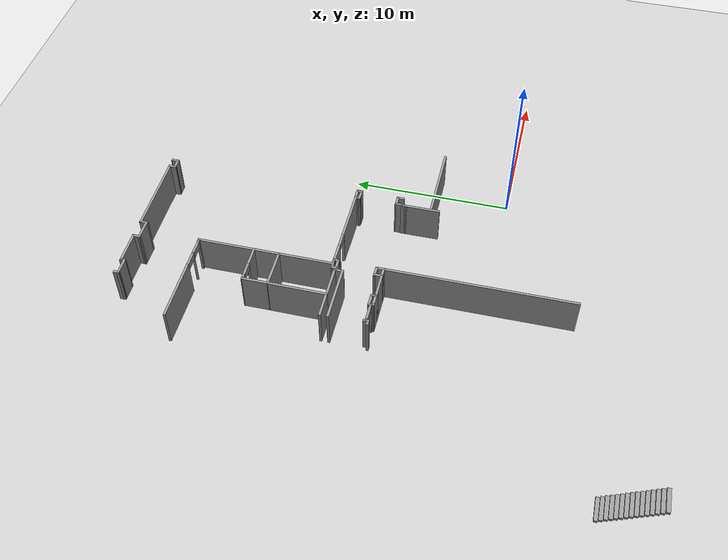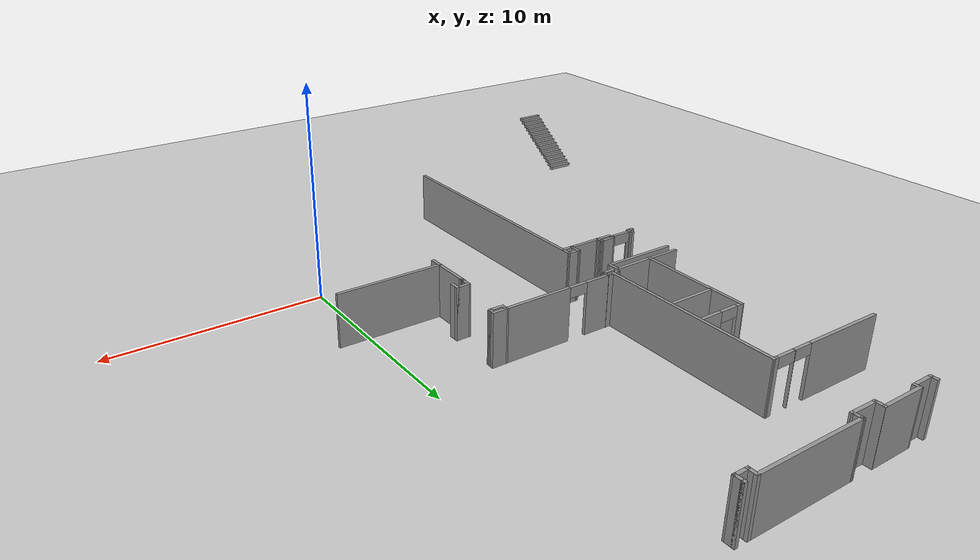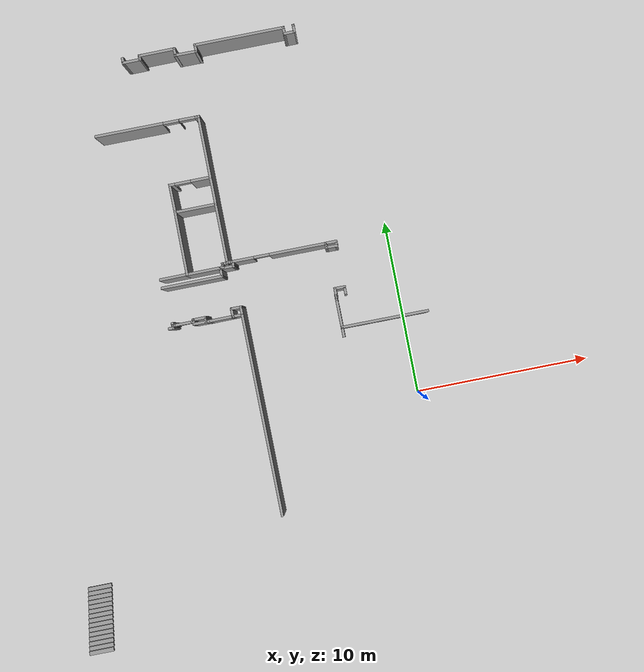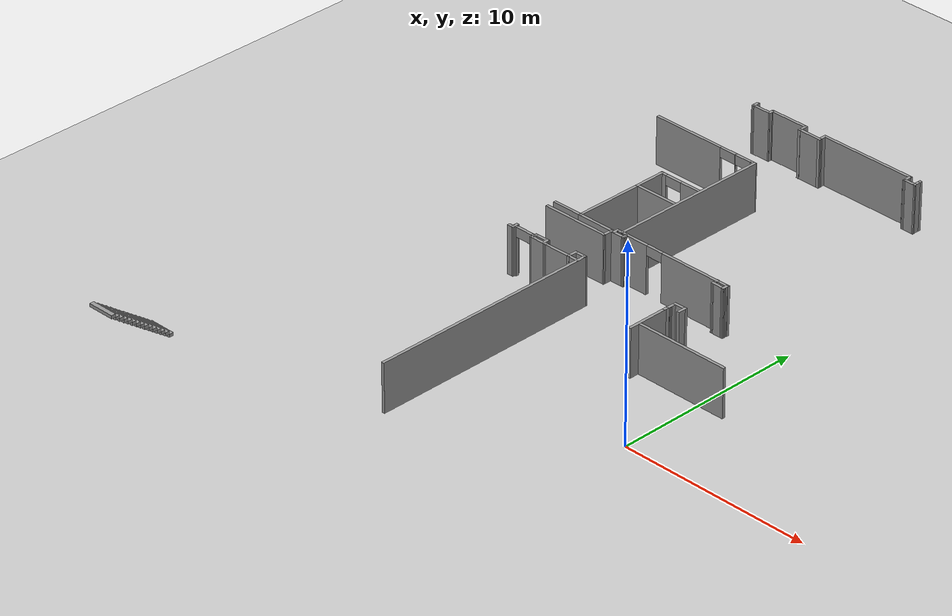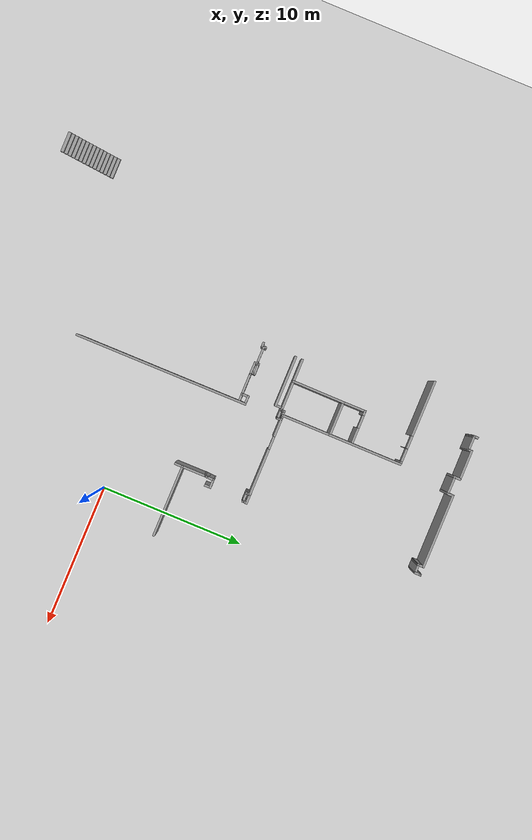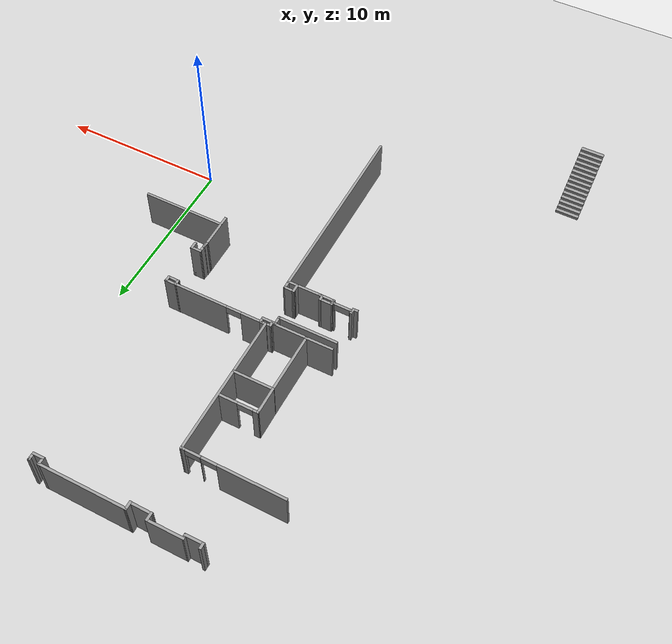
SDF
<sdf version="1.6">
 <world name="default">
  <model name="ground_plane">
   <static>1</static>
   <link name="link">
    <collision name="collision">
     <geometry><plane><normal>0 0 1</normal><size>100 100</size></plane></geometry>
     <surface>
      <contact><collide_bitmask>65535</collide_bitmask></contact>
      <friction><ode><mu>100</mu><mu2>50</mu2></ode></friction>
     </surface>
    </collision>
    <visual name="visual">
     <cast_shadows>0</cast_shadows>
     <geometry><plane><normal>0 0 1</normal><size>100 100</size></plane></geometry>
     <material>
      <script><uri>file://media/materials/scripts/gazebo.material</uri><name>Gazebo/Grey</name></script>
     </material>
    </visual>
   </link>
  </model>
  <model name="Myhal_5th_floor">
   <pose>-0.342666 0.4433 0 0 -0 0</pose>
   <link name="Stairs_2">
    <visual name="Stairs_2_Visual_0">
     <pose>-20.0394 -8.07341 0.083333 0 -0 0</pose>
     <geometry><box><size>1.39487 0.225838 0.166667</size></box></geometry>
     <material>
      <script><uri>file://media/materials/scripts/gazebo.material</uri><name>Gazebo/Grey</name></script>
      <ambient>1 1 1 1</ambient>
     </material>
     <meta><layer>0</layer></meta>
    </visual>
    <collision name="Stairs_2_Collision_0">
     <geometry><box><size>1.39487 0.225838 0.166667</size></box></geometry>
     <pose>-20.0394 -8.07341 0.083333 0 -0 0</pose>
    </collision>
    <visual name="Stairs_2_Visual_1">
     <pose>-20.0394 -8.29925 0.25 0 -0 0</pose>
     <geometry><box><size>1.39487 0.225838 0.166667</size></box></geometry>
     <material>
      <script><uri>file://media/materials/scripts/gazebo.material</uri><name>Gazebo/Grey</name></script>
      <ambient>1 1 1 1</ambient>
     </material>
     <meta><layer>0</layer></meta>
    </visual>
    <collision name="Stairs_2_Collision_1">
     <geometry><box><size>1.39487 0.225838 0.166667</size></box></geometry>
     <pose>-20.0394 -8.29925 0.25 0 -0 0</pose>
    </collision>
    <visual name="Stairs_2_Visual_2">
     <pose>-20.0394 -8.52509 0.416667 0 -0 0</pose>
     <geometry><box><size>1.39487 0.225838 0.166667</size></box></geometry>
     <material>
      <script><uri>file://media/materials/scripts/gazebo.material</uri><name>Gazebo/Grey</name></script>
      <ambient>1 1 1 1</ambient>
     </material>
     <meta><layer>0</layer></meta>
    </visual>
    <collision name="Stairs_2_Collision_2">
     <geometry><box><size>1.39487 0.225838 0.166667</size></box></geometry>
     <pose>-20.0394 -8.52509 0.416667 0 -0 0</pose>
    </collision>
    <visual name="Stairs_2_Visual_3">
     <pose>-20.0394 -8.75093 0.583333 0 -0 0</pose>
     <geometry><box><size>1.39487 0.225838 0.166667</size></box></geometry>
     <material>
      <script><uri>file://media/materials/scripts/gazebo.material</uri><name>Gazebo/Grey</name></script>
      <ambient>1 1 1 1</ambient>
     </material>
     <meta><layer>0</layer></meta>
    </visual>
    <collision name="Stairs_2_Collision_3">
     <geometry><box><size>1.39487 0.225838 0.166667</size></box></geometry>
     <pose>-20.0394 -8.75093 0.583333 0 -0 0</pose>
    </collision>
    <visual name="Stairs_2_Visual_4">
     <pose>-20.0394 -8.97677 0.75 0 -0 0</pose>
     <geometry><box><size>1.39487 0.225838 0.166667</size></box></geometry>
     <material>
      <script><uri>file://media/materials/scripts/gazebo.material</uri><name>Gazebo/Grey</name></script>
      <ambient>1 1 1 1</ambient>
     </material>
     <meta><layer>0</layer></meta>
    </visual>
    <collision name="Stairs_2_Collision_4">
     <geometry><box><size>1.39487 0.225838 0.166667</size></box></geometry>
     <pose>-20.0394 -8.97677 0.75 0 -0 0</pose>
    </collision>
    <visual name="Stairs_2_Visual_5">
     <pose>-20.0394 -9.20261 0.916667 0 -0 0</pose>
     <geometry><box><size>1.39487 0.225838 0.166667</size></box></geometry>
     <material>
      <script><uri>file://media/materials/scripts/gazebo.material</uri><name>Gazebo/Grey</name></script>
      <ambient>1 1 1 1</ambient>
     </material>
     <meta><layer>0</layer></meta>
    </visual>
    <collision name="Stairs_2_Collision_5">
     <geometry><box><size>1.39487 0.225838 0.166667</size></box></geometry>
     <pose>-20.0394 -9.20261 0.916667 0 -0 0</pose>
    </collision>
    <visual name="Stairs_2_Visual_6">
     <pose>-20.0394 -9.42844 1.08333 0 -0 0</pose>
     <geometry><box><size>1.39487 0.225838 0.166667</size></box></geometry>
     <material>
      <script><uri>file://media/materials/scripts/gazebo.material</uri><name>Gazebo/Grey</name></script>
      <ambient>1 1 1 1</ambient>
     </material>
     <meta><layer>0</layer></meta>
    </visual>
    <collision name="Stairs_2_Collision_6">
     <geometry><box><size>1.39487 0.225838 0.166667</size></box></geometry>
     <pose>-20.0394 -9.42844 1.08333 0 -0 0</pose>
    </collision>
    <visual name="Stairs_2_Visual_7">
     <pose>-20.0394 -9.65428 1.25 0 -0 0</pose>
     <geometry><box><size>1.39487 0.225838 0.166667</size></box></geometry>
     <material>
      <script><uri>file://media/materials/scripts/gazebo.material</uri><name>Gazebo/Grey</name></script>
      <ambient>1 1 1 1</ambient>
     </material>
     <meta><layer>0</layer></meta>
    </visual>
    <collision name="Stairs_2_Collision_7">
     <geometry><box><size>1.39487 0.225838 0.166667</size></box></geometry>
     <pose>-20.0394 -9.65428 1.25 0 -0 0</pose>
    </collision>
    <visual name="Stairs_2_Visual_8">
     <pose>-20.0394 -9.88012 1.41667 0 -0 0</pose>
     <geometry><box><size>1.39487 0.225838 0.166667</size></box></geometry>
     <material>
      <script><uri>file://media/materials/scripts/gazebo.material</uri><name>Gazebo/Grey</name></script>
      <ambient>1 1 1 1</ambient>
     </material>
     <meta><layer>0</layer></meta>
    </visual>
    <collision name="Stairs_2_Collision_8">
     <geometry><box><size>1.39487 0.225838 0.166667</size></box></geometry>
     <pose>-20.0394 -9.88012 1.41667 0 -0 0</pose>
    </collision>
    <visual name="Stairs_2_Visual_9">
     <pose>-20.0394 -10.106 1.58333 0 -0 0</pose>
     <geometry><box><size>1.39487 0.225838 0.166667</size></box></geometry>
     <material>
      <script><uri>file://media/materials/scripts/gazebo.material</uri><name>Gazebo/Grey</name></script>
      <ambient>1 1 1 1</ambient>
     </material>
     <meta><layer>0</layer></meta>
    </visual>
    <collision name="Stairs_2_Collision_9">
     <geometry><box><size>1.39487 0.225838 0.166667</size></box></geometry>
     <pose>-20.0394 -10.106 1.58333 0 -0 0</pose>
    </collision>
    <visual name="Stairs_2_Visual_10">
     <pose>-20.0394 -10.3318 1.75 0 -0 0</pose>
     <geometry><box><size>1.39487 0.225838 0.166667</size></box></geometry>
     <material>
      <script><uri>file://media/materials/scripts/gazebo.material</uri><name>Gazebo/Grey</name></script>
      <ambient>1 1 1 1</ambient>
     </material>
     <meta><layer>0</layer></meta>
    </visual>
    <collision name="Stairs_2_Collision_10">
     <geometry><box><size>1.39487 0.225838 0.166667</size></box></geometry>
     <pose>-20.0394 -10.3318 1.75 0 -0 0</pose>
    </collision>
    <visual name="Stairs_2_Visual_11">
     <pose>-20.0394 -10.5576 1.91667 0 -0 0</pose>
     <geometry><box><size>1.39487 0.225838 0.166667</size></box></geometry>
     <material>
      <script><uri>file://media/materials/scripts/gazebo.material</uri><name>Gazebo/Grey</name></script>
      <ambient>1 1 1 1</ambient>
     </material>
     <meta><layer>0</layer></meta>
    </visual>
    <collision name="Stairs_2_Collision_11">
     <geometry><box><size>1.39487 0.225838 0.166667</size></box></geometry>
     <pose>-20.0394 -10.5576 1.91667 0 -0 0</pose>
    </collision>
    <visual name="Stairs_2_Visual_12">
     <pose>-20.0394 -10.7835 2.08333 0 -0 0</pose>
     <geometry><box><size>1.39487 0.225838 0.166667</size></box></geometry>
     <material>
      <script><uri>file://media/materials/scripts/gazebo.material</uri><name>Gazebo/Grey</name></script>
      <ambient>1 1 1 1</ambient>
     </material>
     <meta><layer>0</layer></meta>
    </visual>
    <collision name="Stairs_2_Collision_12">
     <geometry><box><size>1.39487 0.225838 0.166667</size></box></geometry>
     <pose>-20.0394 -10.7835 2.08333 0 -0 0</pose>
    </collision>
    <visual name="Stairs_2_Visual_13">
     <pose>-20.0394 -11.0093 2.25 0 -0 0</pose>
     <geometry><box><size>1.39487 0.225838 0.166667</size></box></geometry>
     <material>
      <script><uri>file://media/materials/scripts/gazebo.material</uri><name>Gazebo/Grey</name></script>
      <ambient>1 1 1 1</ambient>
     </material>
     <meta><layer>0</layer></meta>
    </visual>
    <collision name="Stairs_2_Collision_13">
     <geometry><box><size>1.39487 0.225838 0.166667</size></box></geometry>
     <pose>-20.0394 -11.0093 2.25 0 -0 0</pose>
    </collision>
    <visual name="Stairs_2_Visual_14">
     <pose>-20.0394 -11.2352 2.41667 0 -0 0</pose>
     <geometry><box><size>1.39487 0.225838 0.166667</size></box></geometry>
     <material>
      <script><uri>file://media/materials/scripts/gazebo.material</uri><name>Gazebo/Grey</name></script>
      <ambient>1 1 1 1</ambient>
     </material>
     <meta><layer>0</layer></meta>
    </visual>
    <collision name="Stairs_2_Collision_14">
     <geometry><box><size>1.39487 0.225838 0.166667</size></box></geometry>
     <pose>-20.0394 -11.2352 2.41667 0 -0 0</pose>
    </collision>
   </link>
   <link name="Wall_107">
    <pose>-11.9817 5.95749 0 0 -0 -0.003731</pose>
    <visual name="Wall_107_Visual_0">
     <pose>-0.561486 0 1.25 0 -0 0</pose>
     <geometry><box><size>0.198875 0.15 2.5</size></box></geometry>
     <material>
      <script><uri>file://media/materials/scripts/gazebo.material</uri><name>Gazebo/Grey</name></script>
      <ambient>1 1 1 1</ambient>
     </material>
     <meta><layer>0</layer></meta>
    </visual>
    <collision name="Wall_107_Collision_0">
     <geometry><box><size>0.198875 0.15 2.5</size></box></geometry>
     <pose>-0.561486 0 1.25 0 -0 0</pose>
    </collision>
    <visual name="Wall_107_Visual_1">
     <pose>0.549437 0 1.25 0 -0 0</pose>
     <geometry><box><size>0.222972 0.15 2.5</size></box></geometry>
     <material>
      <script><uri>file://media/materials/scripts/gazebo.material</uri><name>Gazebo/Grey</name></script>
      <ambient>1 1 1 1</ambient>
     </material>
     <meta><layer>0</layer></meta>
    </visual>
    <collision name="Wall_107_Collision_1">
     <geometry><box><size>0.222972 0.15 2.5</size></box></geometry>
     <pose>0.549437 0 1.25 0 -0 0</pose>
    </collision>
    <visual name="Wall_107_Visual_2">
     <pose>-0.012049 0 2.25 0 -0 0</pose>
     <geometry><box><size>0.9 0.15 0.5</size></box></geometry>
     <material>
      <script><uri>file://media/materials/scripts/gazebo.material</uri><name>Gazebo/Grey</name></script>
      <ambient>1 1 1 1</ambient>
     </material>
     <meta><layer>0</layer></meta>
    </visual>
    <collision name="Wall_107_Collision_2">
     <geometry><box><size>0.9 0.15 0.5</size></box></geometry>
     <pose>-0.012049 0 2.25 0 -0 0</pose>
    </collision>
   </link>
   <link name="Wall_21">
    <collision name="Wall_21_Collision">
     <geometry><box><size>2.22276 0.15 2.5</size></box></geometry>
     <pose>0 0 1.25 0 -0 0</pose>
    </collision>
    <visual name="Wall_21_Visual">
     <pose>0 0 1.25 0 -0 0</pose>
     <geometry><box><size>2.22276 0.15 2.5</size></box></geometry>
     <material>
      <script><uri>file://media/materials/scripts/gazebo.material</uri><name>Gazebo/Grey</name></script>
      <ambient>1 1 1 1</ambient>
     </material>
     <meta><layer>0</layer></meta>
    </visual>
    <pose>-3.25633 4.58323 0 0 -0 1.5744</pose>
   </link>
   <link name="Wall_25">
    <collision name="Wall_25_Collision">
     <geometry><box><size>0.524535 0.15 2.5</size></box></geometry>
     <pose>0 0 1.25 0 -0 0</pose>
    </collision>
    <visual name="Wall_25_Visual">
     <pose>0 0 1.25 0 -0 0</pose>
     <geometry><box><size>0.524535 0.15 2.5</size></box></geometry>
     <material>
      <script><uri>file://media/materials/scripts/gazebo.material</uri><name>Gazebo/Grey</name></script>
      <ambient>1 1 1 1</ambient>
     </material>
     <meta><layer>0</layer></meta>
    </visual>
    <pose>-3.23557 6.05409 0 0 -0 1.55781</pose>
   </link>
   <link name="Wall_26">
    <collision name="Wall_26_Collision">
     <geometry><box><size>0.694733 0.15 2.5</size></box></geometry>
     <pose>0 0 1.25 0 -0 0</pose>
    </collision>
    <visual name="Wall_26_Visual">
     <pose>0 0 1.25 0 -0 0</pose>
     <geometry><box><size>0.694733 0.15 2.5</size></box></geometry>
     <material>
      <script><uri>file://media/materials/scripts/gazebo.material</uri><name>Gazebo/Grey</name></script>
      <ambient>1 1 1 1</ambient>
     </material>
     <meta><layer>0</layer></meta>
    </visual>
    <pose>-2.96077 6.24134 0 0 -0 0</pose>
   </link>
   <link name="Wall_27">
    <collision name="Wall_27_Collision">
     <geometry><box><size>0.490458 0.15 2.5</size></box></geometry>
     <pose>0 0 1.25 0 -0 0</pose>
    </collision>
    <visual name="Wall_27_Visual">
     <pose>0 0 1.25 0 -0 0</pose>
     <geometry><box><size>0.490458 0.15 2.5</size></box></geometry>
     <material>
      <script><uri>file://media/materials/scripts/gazebo.material</uri><name>Gazebo/Grey</name></script>
      <ambient>1 1 1 1</ambient>
     </material>
     <meta><layer>0</layer></meta>
    </visual>
    <pose>-2.68841 6.07111 0 0 -0 -1.5708</pose>
   </link>
   <link name="Wall_29">
    <collision name="Wall_29_Collision">
     <geometry><box><size>5.0278 0.15 2.5</size></box></geometry>
     <pose>0 0 1.25 0 -0 0</pose>
    </collision>
    <visual name="Wall_29_Visual">
     <pose>0 0 1.25 0 -0 0</pose>
     <geometry><box><size>5.0278 0.15 2.5</size></box></geometry>
     <material>
      <script><uri>file://media/materials/scripts/gazebo.material</uri><name>Gazebo/Grey</name></script>
      <ambient>1 1 1 1</ambient>
     </material>
     <meta><layer>0</layer></meta>
    </visual>
    <pose>-0.799118 4.02659 0 0 -0 3.13887</pose>
   </link>
   <link name="Wall_460">
    <collision name="Wall_460_Collision">
     <geometry><box><size>0.398216 0.15 2.5</size></box></geometry>
     <pose>0 0 1.25 0 -0 0</pose>
    </collision>
    <visual name="Wall_460_Visual">
     <pose>0 0 1.25 0 -0 0</pose>
     <geometry><box><size>0.398216 0.15 2.5</size></box></geometry>
     <material>
      <script><uri>file://media/materials/scripts/gazebo.material</uri><name>Gazebo/Grey</name></script>
      <ambient>1 1 1 1</ambient>
     </material>
     <meta><layer>0</layer></meta>
    </visual>
    <pose>-3.24903 5.74322 0 0 -0 -1.6598</pose>
   </link>
   <link name="Wall_461">
    <collision name="Wall_461_Collision">
     <geometry><box><size>0.376793 0.15 2.5</size></box></geometry>
     <pose>0 0 1.25 0 -0 0</pose>
    </collision>
    <visual name="Wall_461_Visual">
     <pose>0 0 1.25 0 -0 0</pose>
     <geometry><box><size>0.376793 0.15 2.5</size></box></geometry>
     <material>
      <script><uri>file://media/materials/scripts/gazebo.material</uri><name>Gazebo/Grey</name></script>
      <ambient>1 1 1 1</ambient>
     </material>
     <meta><layer>0</layer></meta>
    </visual>
    <pose>-3.2596 5.73615 0 0 -0 1.56666</pose>
   </link>
   <link name="Wall_590">
    <collision name="Wall_590_Collision">
     <geometry><box><size>0.741053 0.15 2.5</size></box></geometry>
     <pose>0 0 1.25 0 -0 0</pose>
    </collision>
    <visual name="Wall_590_Visual">
     <pose>0 0 1.25 0 -0 0</pose>
     <geometry><box><size>0.741053 0.15 2.5</size></box></geometry>
     <material>
      <script><uri>file://media/materials/scripts/gazebo.material</uri><name>Gazebo/Grey</name></script>
      <ambient>1 1 1 1</ambient>
     </material>
     <meta><layer>0</layer></meta>
    </visual>
    <pose>-2.95013 8.84595 0 0 -0 3.13647</pose>
   </link>
   <link name="Wall_591">
    <pose>-5.94536 8.8431 0 0 -0 3.14007</pose>
    <visual name="Wall_591_Visual_0">
     <pose>-1.11613 0 1.25 0 -0 0</pose>
     <geometry><box><size>3.30868 0.15 2.5</size></box></geometry>
     <material>
      <script><uri>file://media/materials/scripts/gazebo.material</uri><name>Gazebo/Grey</name></script>
      <ambient>1 1 1 1</ambient>
     </material>
     <meta><layer>0</layer></meta>
    </visual>
    <collision name="Wall_591_Collision_0">
     <geometry><box><size>3.30868 0.15 2.5</size></box></geometry>
     <pose>-1.11613 0 1.25 0 -0 0</pose>
    </collision>
    <visual name="Wall_591_Visual_1">
     <pose>2.10434 0 1.25 0 -0 0</pose>
     <geometry><box><size>1.33226 0.15 2.5</size></box></geometry>
     <material>
      <script><uri>file://media/materials/scripts/gazebo.material</uri><name>Gazebo/Grey</name></script>
      <ambient>1 1 1 1</ambient>
     </material>
     <meta><layer>0</layer></meta>
    </visual>
    <collision name="Wall_591_Collision_1">
     <geometry><box><size>1.33226 0.15 2.5</size></box></geometry>
     <pose>2.10434 0 1.25 0 -0 0</pose>
    </collision>
    <visual name="Wall_591_Visual_2">
     <pose>0.98821 0 2.25 0 -0 0</pose>
     <geometry><box><size>0.9 0.15 0.5</size></box></geometry>
     <material>
      <script><uri>file://media/materials/scripts/gazebo.material</uri><name>Gazebo/Grey</name></script>
      <ambient>1 1 1 1</ambient>
     </material>
     <meta><layer>0</layer></meta>
    </visual>
    <collision name="Wall_591_Collision_2">
     <geometry><box><size>0.9 0.15 0.5</size></box></geometry>
     <pose>0.98821 0 2.25 0 -0 0</pose>
    </collision>
   </link>
   <link name="Wall_593">
    <collision name="Wall_593_Collision">
     <geometry><box><size>0.389792 0.15 2.5</size></box></geometry>
     <pose>0 0 1.25 0 -0 0</pose>
    </collision>
    <visual name="Wall_593_Visual">
     <pose>0 0 1.25 0 -0 0</pose>
     <geometry><box><size>0.389792 0.15 2.5</size></box></geometry>
     <material>
      <script><uri>file://media/materials/scripts/gazebo.material</uri><name>Gazebo/Grey</name></script>
      <ambient>1 1 1 1</ambient>
     </material>
     <meta><layer>0</layer></meta>
    </visual>
    <pose>-3.24878 8.72761 0 0 -0 -1.59686</pose>
   </link>
   <link name="Wall_594">
    <collision name="Wall_594_Collision">
     <geometry><box><size>0.734031 0.15 2.5</size></box></geometry>
     <pose>0 0 1.25 0 -0 0</pose>
    </collision>
    <visual name="Wall_594_Visual">
     <pose>0 0 1.25 0 -0 0</pose>
     <geometry><box><size>0.734031 0.15 2.5</size></box></geometry>
     <material>
      <script><uri>file://media/materials/scripts/gazebo.material</uri><name>Gazebo/Grey</name></script>
      <ambient>1 1 1 1</ambient>
     </material>
     <meta><layer>0</layer></meta>
    </visual>
    <pose>-2.95991 8.60256 0 0 -0 -0.017768</pose>
   </link>
   <link name="Wall_596">
    <collision name="Wall_596_Collision">
     <geometry><box><size>0.343785 0.15 2.5</size></box></geometry>
     <pose>0 0 1.25 0 -0 0</pose>
    </collision>
    <visual name="Wall_596_Visual">
     <pose>0 0 1.25 0 -0 0</pose>
     <geometry><box><size>0.343785 0.15 2.5</size></box></geometry>
     <material>
      <script><uri>file://media/materials/scripts/gazebo.material</uri><name>Gazebo/Grey</name></script>
      <ambient>1 1 1 1</ambient>
     </material>
     <meta><layer>0</layer></meta>
    </visual>
    <pose>-2.66792 8.69427 0 0 -0 1.5708</pose>
   </link>
   <link name="Wall_604">
    <collision name="Wall_604_Collision">
     <geometry><box><size>0.15 0.15 2.5</size></box></geometry>
     <pose>0 0 1.25 0 -0 0</pose>
    </collision>
    <visual name="Wall_604_Visual">
     <pose>0 0 1.25 0 -0 0</pose>
     <geometry><box><size>0.15 0.15 2.5</size></box></geometry>
     <material>
      <script><uri>file://media/materials/scripts/gazebo.material</uri><name>Gazebo/Grey</name></script>
      <ambient>1 1 1 1</ambient>
     </material>
     <meta><layer>0</layer></meta>
    </visual>
    <pose>-2.6724 21.2148 0 0 -0 0</pose>
   </link>
   <link name="Wall_605">
    <collision name="Wall_605_Collision">
     <geometry><box><size>0.5 0.15 2.5</size></box></geometry>
     <pose>0 0 1.25 0 -0 0</pose>
    </collision>
    <visual name="Wall_605_Visual">
     <pose>0 0 1.25 0 -0 0</pose>
     <geometry><box><size>0.5 0.15 2.5</size></box></geometry>
     <material>
      <script><uri>file://media/materials/scripts/gazebo.material</uri><name>Gazebo/Grey</name></script>
      <ambient>1 1 1 1</ambient>
     </material>
     <meta><layer>0</layer></meta>
    </visual>
    <pose>-2.6724 21.0398 0 0 -0 -1.5708</pose>
   </link>
   <link name="Wall_606">
    <collision name="Wall_606_Collision">
     <geometry><box><size>0.717033 0.15 2.5</size></box></geometry>
     <pose>0 0 1.25 0 -0 0</pose>
    </collision>
    <visual name="Wall_606_Visual">
     <pose>0 0 1.25 0 -0 0</pose>
     <geometry><box><size>0.717033 0.15 2.5</size></box></geometry>
     <material>
      <script><uri>file://media/materials/scripts/gazebo.material</uri><name>Gazebo/Grey</name></script>
      <ambient>1 1 1 1</ambient>
     </material>
     <meta><layer>0</layer></meta>
    </visual>
    <pose>-2.9559 20.8621 0 0 -0 -3.1319</pose>
   </link>
   <link name="Wall_607">
    <collision name="Wall_607_Collision">
     <geometry><box><size>0.5 0.15 2.5</size></box></geometry>
     <pose>0 0 1.25 0 -0 0</pose>
    </collision>
    <visual name="Wall_607_Visual">
     <pose>0 0 1.25 0 -0 0</pose>
     <geometry><box><size>0.5 0.15 2.5</size></box></geometry>
     <material>
      <script><uri>file://media/materials/scripts/gazebo.material</uri><name>Gazebo/Grey</name></script>
      <ambient>1 1 1 1</ambient>
     </material>
     <meta><layer>0</layer></meta>
    </visual>
    <pose>-3.24491 21.0343 0 0 -0 1.5708</pose>
   </link>
   <link name="Wall_609">
    <collision name="Wall_609_Collision">
     <geometry><box><size>5.20601 0.15 2.5</size></box></geometry>
     <pose>0 0 1.25 0 -0 0</pose>
    </collision>
    <visual name="Wall_609_Visual">
     <pose>0 0 1.25 0 -0 0</pose>
     <geometry><box><size>5.20601 0.15 2.5</size></box></geometry>
     <material>
      <script><uri>file://media/materials/scripts/gazebo.material</uri><name>Gazebo/Grey</name></script>
      <ambient>1 1 1 1</ambient>
     </material>
     <meta><layer>0</layer></meta>
    </visual>
    <pose>-5.77291 21.2093 0 0 -0 3.14159</pose>
   </link>
   <link name="Wall_611">
    <collision name="Wall_611_Collision">
     <geometry><box><size>0.522037 0.15 2.5</size></box></geometry>
     <pose>0 0 1.25 0 -0 0</pose>
    </collision>
    <visual name="Wall_611_Visual">
     <pose>0 0 1.25 0 -0 0</pose>
     <geometry><box><size>0.522037 0.15 2.5</size></box></geometry>
     <material>
      <script><uri>file://media/materials/scripts/gazebo.material</uri><name>Gazebo/Grey</name></script>
      <ambient>1 1 1 1</ambient>
     </material>
     <meta><layer>0</layer></meta>
    </visual>
    <pose>-8.30366 21.0233 0 0 -0 -1.55601</pose>
   </link>
   <link name="Wall_612">
    <collision name="Wall_612_Collision">
     <geometry><box><size>1.34353 0.15 2.5</size></box></geometry>
     <pose>0 0 1.25 0 -0 0</pose>
    </collision>
    <visual name="Wall_612_Visual">
     <pose>0 0 1.25 0 -0 0</pose>
     <geometry><box><size>1.34353 0.15 2.5</size></box></geometry>
     <material>
      <script><uri>file://media/materials/scripts/gazebo.material</uri><name>Gazebo/Grey</name></script>
      <ambient>1 1 1 1</ambient>
     </material>
     <meta><layer>0</layer></meta>
    </visual>
    <pose>-8.89766 20.8483 0 0 -0 3.13238</pose>
   </link>
   <link name="Wall_613">
    <collision name="Wall_613_Collision">
     <geometry><box><size>0.516538 0.15 2.5</size></box></geometry>
     <pose>0 0 1.25 0 -0 0</pose>
    </collision>
    <visual name="Wall_613_Visual">
     <pose>0 0 1.25 0 -0 0</pose>
     <geometry><box><size>0.516538 0.15 2.5</size></box></geometry>
     <material>
      <script><uri>file://media/materials/scripts/gazebo.material</uri><name>Gazebo/Grey</name></script>
      <ambient>1 1 1 1</ambient>
     </material>
     <meta><layer>0</layer></meta>
    </visual>
    <pose>-9.49165 21.0316 0 0 -0 1.55579</pose>
   </link>
   <link name="Wall_614">
    <collision name="Wall_614_Collision">
     <geometry><box><size>2.14267 0.15 2.5</size></box></geometry>
     <pose>0 0 1.25 0 -0 0</pose>
    </collision>
    <visual name="Wall_614_Visual">
     <pose>0 0 1.25 0 -0 0</pose>
     <geometry><box><size>2.14267 0.15 2.5</size></box></geometry>
     <material>
      <script><uri>file://media/materials/scripts/gazebo.material</uri><name>Gazebo/Grey</name></script>
      <ambient>1 1 1 1</ambient>
     </material>
     <meta><layer>0</layer></meta>
    </visual>
    <pose>-10.4907 21.2166 0 0 -0 -3.13789</pose>
   </link>
   <link name="Wall_616">
    <collision name="Wall_616_Collision">
     <geometry><box><size>0.355047 0.15 2.5</size></box></geometry>
     <pose>0 0 1.25 0 -0 0</pose>
    </collision>
    <visual name="Wall_616_Visual">
     <pose>0 0 1.25 0 -0 0</pose>
     <geometry><box><size>0.355047 0.15 2.5</size></box></geometry>
     <material>
      <script><uri>file://media/materials/scripts/gazebo.material</uri><name>Gazebo/Grey</name></script>
      <ambient>1 1 1 1</ambient>
     </material>
     <meta><layer>0</layer></meta>
    </visual>
    <pose>-11.4915 21.1104 0 0 -0 -1.57894</pose>
   </link>
   <link name="Wall_617">
    <collision name="Wall_617_Collision">
     <geometry><box><size>1.11573 0.15 2.5</size></box></geometry>
     <pose>0 0 1.25 0 -0 0</pose>
    </collision>
    <visual name="Wall_617_Visual">
     <pose>0 0 1.25 0 -0 0</pose>
     <geometry><box><size>1.11573 0.15 2.5</size></box></geometry>
     <material>
      <script><uri>file://media/materials/scripts/gazebo.material</uri><name>Gazebo/Grey</name></script>
      <ambient>1 1 1 1</ambient>
     </material>
     <meta><layer>0</layer></meta>
    </visual>
    <pose>-11.9716 21.0043 0 0 -0 -3.1341</pose>
   </link>
   <link name="Wall_618">
    <collision name="Wall_618_Collision">
     <geometry><box><size>0.381405 0.15 2.5</size></box></geometry>
     <pose>0 0 1.25 0 -0 0</pose>
    </collision>
    <visual name="Wall_618_Visual">
     <pose>0 0 1.25 0 -0 0</pose>
     <geometry><box><size>0.381405 0.15 2.5</size></box></geometry>
     <material>
      <script><uri>file://media/materials/scripts/gazebo.material</uri><name>Gazebo/Grey</name></script>
      <ambient>1 1 1 1</ambient>
     </material>
     <meta><layer>0</layer></meta>
    </visual>
    <pose>-12.4507 21.1164 0 0 -0 1.56945</pose>
   </link>
   <link name="Wall_625">
    <pose>-11.827 17.2253 0 0 -0 -0.002063</pose>
    <visual name="Wall_625_Visual_0">
     <pose>-1.05195 0 1.25 0 -0 0</pose>
     <geometry><box><size>3.91449 0.15 2.5</size></box></geometry>
     <material>
      <script><uri>file://media/materials/scripts/gazebo.material</uri><name>Gazebo/Grey</name></script>
      <ambient>1 1 1 1</ambient>
     </material>
     <meta><layer>0</layer></meta>
    </visual>
    <collision name="Wall_625_Collision_0">
     <geometry><box><size>3.91449 0.15 2.5</size></box></geometry>
     <pose>-1.05195 0 1.25 0 -0 0</pose>
    </collision>
    <visual name="Wall_625_Visual_1">
     <pose>1.81866 0 1.25 0 -0 0</pose>
     <geometry><box><size>0.026743 0.15 2.5</size></box></geometry>
     <material>
      <script><uri>file://media/materials/scripts/gazebo.material</uri><name>Gazebo/Grey</name></script>
      <ambient>1 1 1 1</ambient>
     </material>
     <meta><layer>0</layer></meta>
    </visual>
    <collision name="Wall_625_Collision_1">
     <geometry><box><size>0.026743 0.15 2.5</size></box></geometry>
     <pose>1.81866 0 1.25 0 -0 0</pose>
    </collision>
    <visual name="Wall_625_Visual_2">
     <pose>2.87062 0 1.25 0 -0 0</pose>
     <geometry><box><size>0.277167 0.15 2.5</size></box></geometry>
     <material>
      <script><uri>file://media/materials/scripts/gazebo.material</uri><name>Gazebo/Grey</name></script>
      <ambient>1 1 1 1</ambient>
     </material>
     <meta><layer>0</layer></meta>
    </visual>
    <collision name="Wall_625_Collision_2">
     <geometry><box><size>0.277167 0.15 2.5</size></box></geometry>
     <pose>2.87062 0 1.25 0 -0 0</pose>
    </collision>
    <visual name="Wall_625_Visual_3">
     <pose>1.35529 0 2.25 0 -0 0</pose>
     <geometry><box><size>0.9 0.15 0.5</size></box></geometry>
     <material>
      <script><uri>file://media/materials/scripts/gazebo.material</uri><name>Gazebo/Grey</name></script>
      <ambient>1 1 1 1</ambient>
     </material>
     <meta><layer>0</layer></meta>
    </visual>
    <collision name="Wall_625_Collision_3">
     <geometry><box><size>0.9 0.15 0.5</size></box></geometry>
     <pose>1.35529 0 2.25 0 -0 0</pose>
    </collision>
    <visual name="Wall_625_Visual_4">
     <pose>2.28203 0 2.25 0 -0 0</pose>
     <geometry><box><size>0.9 0.15 0.5</size></box></geometry>
     <material>
      <script><uri>file://media/materials/scripts/gazebo.material</uri><name>Gazebo/Grey</name></script>
      <ambient>1 1 1 1</ambient>
     </material>
     <meta><layer>0</layer></meta>
    </visual>
    <collision name="Wall_625_Collision_4">
     <geometry><box><size>0.9 0.15 0.5</size></box></geometry>
     <pose>2.28203 0 2.25 0 -0 0</pose>
    </collision>
   </link>
   <link name="Wall_627">
    <collision name="Wall_627_Collision">
     <geometry><box><size>0.406292 0.15 2.5</size></box></geometry>
     <pose>0 0 1.25 0 -0 0</pose>
    </collision>
    <visual name="Wall_627_Visual">
     <pose>0 0 1.25 0 -0 0</pose>
     <geometry><box><size>0.406292 0.15 2.5</size></box></geometry>
     <material>
      <script><uri>file://media/materials/scripts/gazebo.material</uri><name>Gazebo/Grey</name></script>
      <ambient>1 1 1 1</ambient>
     </material>
     <meta><layer>0</layer></meta>
    </visual>
    <pose>-8.76448 8.85395 0 0 -0 -3.12793</pose>
   </link>
   <link name="Wall_629">
    <collision name="Wall_629_Collision">
     <geometry><box><size>8.51708 0.15 2.5</size></box></geometry>
     <pose>0 0 1.25 0 -0 0</pose>
    </collision>
    <visual name="Wall_629_Visual">
     <pose>0 0 1.25 0 -0 0</pose>
     <geometry><box><size>8.51708 0.15 2.5</size></box></geometry>
     <material>
      <script><uri>file://media/materials/scripts/gazebo.material</uri><name>Gazebo/Grey</name></script>
      <ambient>1 1 1 1</ambient>
     </material>
     <meta><layer>0</layer></meta>
    </visual>
    <pose>-8.89257 13.0357 0 0 -0 -1.57075</pose>
   </link>
   <link name="Wall_631">
    <pose>-10.06 13.7444 0 0 -0 -3.13695</pose>
    <visual name="Wall_631_Visual_0">
     <pose>-0.632072 0 1.25 0 -0 0</pose>
     <geometry><box><size>1.205 0.15 2.5</size></box></geometry>
     <material>
      <script><uri>file://media/materials/scripts/gazebo.material</uri><name>Gazebo/Grey</name></script>
      <ambient>1 1 1 1</ambient>
     </material>
     <meta><layer>0</layer></meta>
    </visual>
    <collision name="Wall_631_Collision_0">
     <geometry><box><size>1.205 0.15 2.5</size></box></geometry>
     <pose>-0.632072 0 1.25 0 -0 0</pose>
    </collision>
    <visual name="Wall_631_Visual_1">
     <pose>1.0525 0 1.25 0 -0 0</pose>
     <geometry><box><size>0.364143 0.15 2.5</size></box></geometry>
     <material>
      <script><uri>file://media/materials/scripts/gazebo.material</uri><name>Gazebo/Grey</name></script>
      <ambient>1 1 1 1</ambient>
     </material>
     <meta><layer>0</layer></meta>
    </visual>
    <collision name="Wall_631_Collision_1">
     <geometry><box><size>0.364143 0.15 2.5</size></box></geometry>
     <pose>1.0525 0 1.25 0 -0 0</pose>
    </collision>
    <visual name="Wall_631_Visual_2">
     <pose>0.42043 0 2.25 0 -0 0</pose>
     <geometry><box><size>0.9 0.15 0.5</size></box></geometry>
     <material>
      <script><uri>file://media/materials/scripts/gazebo.material</uri><name>Gazebo/Grey</name></script>
      <ambient>1 1 1 1</ambient>
     </material>
     <meta><layer>0</layer></meta>
    </visual>
    <collision name="Wall_631_Collision_2">
     <geometry><box><size>0.9 0.15 0.5</size></box></geometry>
     <pose>0.42043 0 2.25 0 -0 0</pose>
    </collision>
   </link>
   <link name="Wall_632">
    <collision name="Wall_632_Collision">
     <geometry><box><size>1.69557 0.15 2.5</size></box></geometry>
     <pose>0 0 1.25 0 -0 0</pose>
    </collision>
    <visual name="Wall_632_Visual">
     <pose>0 0 1.25 0 -0 0</pose>
     <geometry><box><size>1.69557 0.15 2.5</size></box></geometry>
     <material>
      <script><uri>file://media/materials/scripts/gazebo.material</uri><name>Gazebo/Grey</name></script>
      <ambient>1 1 1 1</ambient>
     </material>
     <meta><layer>0</layer></meta>
    </visual>
    <pose>-11.2169 12.9662 0 0 -0 -1.56732</pose>
   </link>
   <link name="Wall_633">
    <collision name="Wall_633_Collision">
     <geometry><box><size>2.46873 0.15 2.5</size></box></geometry>
     <pose>0 0 1.25 0 -0 0</pose>
    </collision>
    <visual name="Wall_633_Visual">
     <pose>0 0 1.25 0 -0 0</pose>
     <geometry><box><size>2.46873 0.15 2.5</size></box></geometry>
     <material>
      <script><uri>file://media/materials/scripts/gazebo.material</uri><name>Gazebo/Grey</name></script>
      <ambient>1 1 1 1</ambient>
     </material>
     <meta><layer>0</layer></meta>
    </visual>
    <pose>-10.0549 12.1951 0 0 -0 0.001425</pose>
   </link>
   <link name="Wall_635">
    <collision name="Wall_635_Collision">
     <geometry><box><size>3.70887 0.15 2.5</size></box></geometry>
     <pose>0 0 1.25 0 -0 0</pose>
    </collision>
    <visual name="Wall_635_Visual">
     <pose>0 0 1.25 0 -0 0</pose>
     <geometry><box><size>3.70887 0.15 2.5</size></box></geometry>
     <material>
      <script><uri>file://media/materials/scripts/gazebo.material</uri><name>Gazebo/Grey</name></script>
      <ambient>1 1 1 1</ambient>
     </material>
     <meta><layer>0</layer></meta>
    </visual>
    <pose>-11.2233 10.414 0 0 -0 -1.57592</pose>
   </link>
   <link name="Wall_636">
    <collision name="Wall_636_Collision">
     <geometry><box><size>2.21284 0.15 2.5</size></box></geometry>
     <pose>0 0 1.25 0 -0 0</pose>
    </collision>
    <visual name="Wall_636_Visual">
     <pose>0 0 1.25 0 -0 0</pose>
     <geometry><box><size>2.21284 0.15 2.5</size></box></geometry>
     <material>
      <script><uri>file://media/materials/scripts/gazebo.material</uri><name>Gazebo/Grey</name></script>
      <ambient>1 1 1 1</ambient>
     </material>
     <meta><layer>0</layer></meta>
    </visual>
    <pose>-10.201 8.63159 0 0 -0 0.001868</pose>
   </link>
   <link name="Wall_638">
    <collision name="Wall_638_Collision">
     <geometry><box><size>0.338314 0.15 2.5</size></box></geometry>
     <pose>0 0 1.25 0 -0 0</pose>
    </collision>
    <visual name="Wall_638_Visual">
     <pose>0 0 1.25 0 -0 0</pose>
     <geometry><box><size>0.338314 0.15 2.5</size></box></geometry>
     <material>
      <script><uri>file://media/materials/scripts/gazebo.material</uri><name>Gazebo/Grey</name></script>
      <ambient>1 1 1 1</ambient>
     </material>
     <meta><layer>0</layer></meta>
    </visual>
    <pose>-9.16869 8.73263 0 0 -0 1.5609</pose>
   </link>
   <link name="Wall_639">
    <collision name="Wall_639_Collision">
     <geometry><box><size>0.38317 0.15 2.5</size></box></geometry>
     <pose>0 0 1.25 0 -0 0</pose>
    </collision>
    <visual name="Wall_639_Visual">
     <pose>0 0 1.25 0 -0 0</pose>
     <geometry><box><size>0.38317 0.15 2.5</size></box></geometry>
     <material>
      <script><uri>file://media/materials/scripts/gazebo.material</uri><name>Gazebo/Grey</name></script>
      <ambient>1 1 1 1</ambient>
     </material>
     <meta><layer>0</layer></meta>
    </visual>
    <pose>-9.05125 8.82678 0 0 -0 0</pose>
   </link>
   <link name="Wall_642">
    <collision name="Wall_642_Collision">
     <geometry><box><size>0.351409 0.15 2.5</size></box></geometry>
     <pose>0 0 1.25 0 -0 0</pose>
    </collision>
    <visual name="Wall_642_Visual">
     <pose>0 0 1.25 0 -0 0</pose>
     <geometry><box><size>0.351409 0.15 2.5</size></box></geometry>
     <material>
      <script><uri>file://media/materials/scripts/gazebo.material</uri><name>Gazebo/Grey</name></script>
      <ambient>1 1 1 1</ambient>
     </material>
     <meta><layer>0</layer></meta>
    </visual>
    <pose>-8.58431 8.6983 0 0 -0 1.58488</pose>
   </link>
   <link name="Wall_644">
    <collision name="Wall_644_Collision">
     <geometry><box><size>0.902015 0.15 2.5</size></box></geometry>
     <pose>0 0 1.25 0 -0 0</pose>
    </collision>
    <visual name="Wall_644_Visual">
     <pose>0 0 1.25 0 -0 0</pose>
     <geometry><box><size>0.902015 0.15 2.5</size></box></geometry>
     <material>
      <script><uri>file://media/materials/scripts/gazebo.material</uri><name>Gazebo/Grey</name></script>
      <ambient>1 1 1 1</ambient>
     </material>
     <meta><layer>0</layer></meta>
    </visual>
    <pose>-8.9589 8.59627 0 0 -0 -3.13807</pose>
   </link>
   <link name="Wall_645">
    <collision name="Wall_645_Collision">
     <geometry><box><size>0.590405 0.15 2.5</size></box></geometry>
     <pose>0 0 1.25 0 -0 0</pose>
    </collision>
    <visual name="Wall_645_Visual">
     <pose>0 0 1.25 0 -0 0</pose>
     <geometry><box><size>0.590405 0.15 2.5</size></box></geometry>
     <material>
      <script><uri>file://media/materials/scripts/gazebo.material</uri><name>Gazebo/Grey</name></script>
      <ambient>1 1 1 1</ambient>
     </material>
     <meta><layer>0</layer></meta>
    </visual>
    <pose>-9.3349 8.37475 0 0 -0 -1.5708</pose>
   </link>
   <link name="Wall_646">
    <collision name="Wall_646_Collision">
     <geometry><box><size>3.56525 0.15 2.5</size></box></geometry>
     <pose>0 0 1.25 0 -0 0</pose>
    </collision>
    <visual name="Wall_646_Visual">
     <pose>0 0 1.25 0 -0 0</pose>
     <geometry><box><size>3.56525 0.15 2.5</size></box></geometry>
     <material>
      <script><uri>file://media/materials/scripts/gazebo.material</uri><name>Gazebo/Grey</name></script>
      <ambient>1 1 1 1</ambient>
     </material>
     <meta><layer>0</layer></meta>
    </visual>
    <pose>-11.0425 8.15291 0 0 -0 -3.14064</pose>
   </link>
   <link name="Wall_649">
    <collision name="Wall_649_Collision">
     <geometry><box><size>1.66326 0.15 2.5</size></box></geometry>
     <pose>0 0 1.25 0 -0 0</pose>
    </collision>
    <visual name="Wall_649_Visual">
     <pose>0 0 1.25 0 -0 0</pose>
     <geometry><box><size>1.66326 0.15 2.5</size></box></geometry>
     <material>
      <script><uri>file://media/materials/scripts/gazebo.material</uri><name>Gazebo/Grey</name></script>
      <ambient>1 1 1 1</ambient>
     </material>
     <meta><layer>0</layer></meta>
    </visual>
    <pose>-11.9891 8.62966 0 0 -0 0.006557</pose>
   </link>
   <link name="Wall_70">
    <collision name="Wall_70_Collision">
     <geometry><box><size>12.1 0.15 2.5</size></box></geometry>
     <pose>0 0 1.25 0 -0 0</pose>
    </collision>
    <visual name="Wall_70_Visual">
     <pose>0 0 1.25 0 -0 0</pose>
     <geometry><box><size>12.1 0.15 2.5</size></box></geometry>
     <material>
      <script><uri>file://media/materials/scripts/gazebo.material</uri><name>Gazebo/Grey</name></script>
      <ambient>1 1 1 1</ambient>
     </material>
     <meta><layer>0</layer></meta>
    </visual>
    <pose>-8.61841 0.273719 0 0 -0 -1.56835</pose>
   </link>
   <link name="Wall_72">
    <collision name="Wall_72_Collision">
     <geometry><box><size>0.682553 0.15 2.5</size></box></geometry>
     <pose>0 0 1.25 0 -0 0</pose>
    </collision>
    <visual name="Wall_72_Visual">
     <pose>0 0 1.25 0 -0 0</pose>
     <geometry><box><size>0.682553 0.15 2.5</size></box></geometry>
     <material>
      <script><uri>file://media/materials/scripts/gazebo.material</uri><name>Gazebo/Grey</name></script>
      <ambient>1 1 1 1</ambient>
     </material>
     <meta><layer>0</layer></meta>
    </visual>
    <pose>-8.89926 6.25057 0 0 -0 3.13455</pose>
   </link>
   <link name="Wall_73">
    <collision name="Wall_73_Collision">
     <geometry><box><size>0.586741 0.15 2.5</size></box></geometry>
     <pose>0 0 1.25 0 -0 0</pose>
    </collision>
    <visual name="Wall_73_Visual">
     <pose>0 0 1.25 0 -0 0</pose>
     <geometry><box><size>0.586741 0.15 2.5</size></box></geometry>
     <material>
      <script><uri>file://media/materials/scripts/gazebo.material</uri><name>Gazebo/Grey</name></script>
      <ambient>1 1 1 1</ambient>
     </material>
     <meta><layer>0</layer></meta>
    </visual>
    <pose>-9.16551 6.03407 0 0 -0 -1.5708</pose>
   </link>
   <link name="Wall_74">
    <collision name="Wall_74_Collision">
     <geometry><box><size>0.671263 0.15 2.5</size></box></geometry>
     <pose>0 0 1.25 0 -0 0</pose>
    </collision>
    <visual name="Wall_74_Visual">
     <pose>0 0 1.25 0 -0 0</pose>
     <geometry><box><size>0.671263 0.15 2.5</size></box></geometry>
     <material>
      <script><uri>file://media/materials/scripts/gazebo.material</uri><name>Gazebo/Grey</name></script>
      <ambient>1 1 1 1</ambient>
     </material>
     <meta><layer>0</layer></meta>
    </visual>
    <pose>-8.90488 5.81614 0 0 -0 -0.007194</pose>
   </link>
   <link name="Wall_76">
    <collision name="Wall_76_Collision">
     <geometry><box><size>1.52438 0.15 2.5</size></box></geometry>
     <pose>0 0 1.25 0 -0 0</pose>
    </collision>
    <visual name="Wall_76_Visual">
     <pose>0 0 1.25 0 -0 0</pose>
     <geometry><box><size>1.52438 0.15 2.5</size></box></geometry>
     <material>
      <script><uri>file://media/materials/scripts/gazebo.material</uri><name>Gazebo/Grey</name></script>
      <ambient>1 1 1 1</ambient>
     </material>
     <meta><layer>0</layer></meta>
    </visual>
    <pose>-9.8888 5.81488 0 0 -0 -3.13614</pose>
   </link>
   <link name="Wall_77">
    <collision name="Wall_77_Collision">
     <geometry><box><size>0.963804 0.15 2.5</size></box></geometry>
     <pose>0 0 1.25 0 -0 0</pose>
    </collision>
    <visual name="Wall_77_Visual">
     <pose>0 0 1.25 0 -0 0</pose>
     <geometry><box><size>0.963804 0.15 2.5</size></box></geometry>
     <material>
      <script><uri>file://media/materials/scripts/gazebo.material</uri><name>Gazebo/Grey</name></script>
      <ambient>1 1 1 1</ambient>
     </material>
     <meta><layer>0</layer></meta>
    </visual>
    <pose>-10.9829 5.81582 0 0 -0 3.13007</pose>
   </link>
   <link name="Wall_78">
    <collision name="Wall_78_Collision">
     <geometry><box><size>0.390007 0.15 2.5</size></box></geometry>
     <pose>0 0 1.25 0 -0 0</pose>
    </collision>
    <visual name="Wall_78_Visual">
     <pose>0 0 1.25 0 -0 0</pose>
     <geometry><box><size>0.390007 0.15 2.5</size></box></geometry>
     <material>
      <script><uri>file://media/materials/scripts/gazebo.material</uri><name>Gazebo/Grey</name></script>
      <ambient>1 1 1 1</ambient>
     </material>
     <meta><layer>0</layer></meta>
    </visual>
    <pose>-11.3888 5.94051 0 0 -0 1.56298</pose>
   </link>
   <link name="Wall_79">
    <collision name="Wall_79_Collision">
     <geometry><box><size>0.823128 0.15 2.5</size></box></geometry>
     <pose>0 0 1.25 0 -0 0</pose>
    </collision>
    <visual name="Wall_79_Visual">
     <pose>0 0 1.25 0 -0 0</pose>
     <geometry><box><size>0.823128 0.15 2.5</size></box></geometry>
     <material>
      <script><uri>file://media/materials/scripts/gazebo.material</uri><name>Gazebo/Grey</name></script>
      <ambient>1 1 1 1</ambient>
     </material>
     <meta><layer>0</layer></meta>
    </visual>
    <pose>-11.0513 6.06144 0 0 -0 0.002786</pose>
   </link>
   <link name="Wall_80">
    <collision name="Wall_80_Collision">
     <geometry><box><size>0.380633 0.15 2.5</size></box></geometry>
     <pose>0 0 1.25 0 -0 0</pose>
    </collision>
    <visual name="Wall_80_Visual">
     <pose>0 0 1.25 0 -0 0</pose>
     <geometry><box><size>0.380633 0.15 2.5</size></box></geometry>
     <material>
      <script><uri>file://media/materials/scripts/gazebo.material</uri><name>Gazebo/Grey</name></script>
      <ambient>1 1 1 1</ambient>
     </material>
     <meta><layer>0</layer></meta>
    </visual>
    <pose>-10.7157 5.94707 0 0 -0 -1.57893</pose>
   </link>
   <link name="Wall_83">
    <collision name="Wall_83_Collision">
     <geometry><box><size>0.358421 0.15 2.5</size></box></geometry>
     <pose>0 0 1.25 0 -0 0</pose>
    </collision>
    <visual name="Wall_83_Visual">
     <pose>0 0 1.25 0 -0 0</pose>
     <geometry><box><size>0.358421 0.15 2.5</size></box></geometry>
     <material>
      <script><uri>file://media/materials/scripts/gazebo.material</uri><name>Gazebo/Grey</name></script>
      <ambient>1 1 1 1</ambient>
     </material>
     <meta><layer>0</layer></meta>
    </visual>
    <pose>-12.6909 5.83238 0 0 -0 0.012634</pose>
   </link>
   <link name="Wall_84">
    <collision name="Wall_84_Collision">
     <geometry><box><size>0.388063 0.15 2.5</size></box></geometry>
     <pose>0 0 1.25 0 -0 0</pose>
    </collision>
    <visual name="Wall_84_Visual">
     <pose>0 0 1.25 0 -0 0</pose>
     <geometry><box><size>0.388063 0.15 2.5</size></box></geometry>
     <material>
      <script><uri>file://media/materials/scripts/gazebo.material</uri><name>Gazebo/Grey</name></script>
      <ambient>1 1 1 1</ambient>
     </material>
     <meta><layer>0</layer></meta>
    </visual>
    <pose>-12.588 5.95272 0 0 -0 1.58121</pose>
   </link>
   <static>1</static>
  </model>
 </world>
</sdf>
